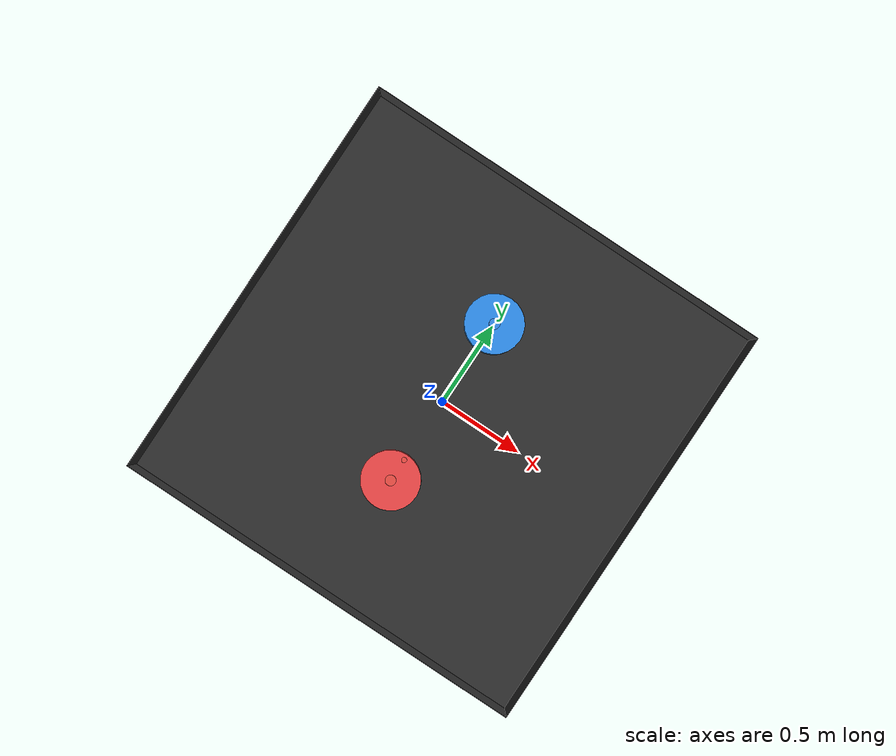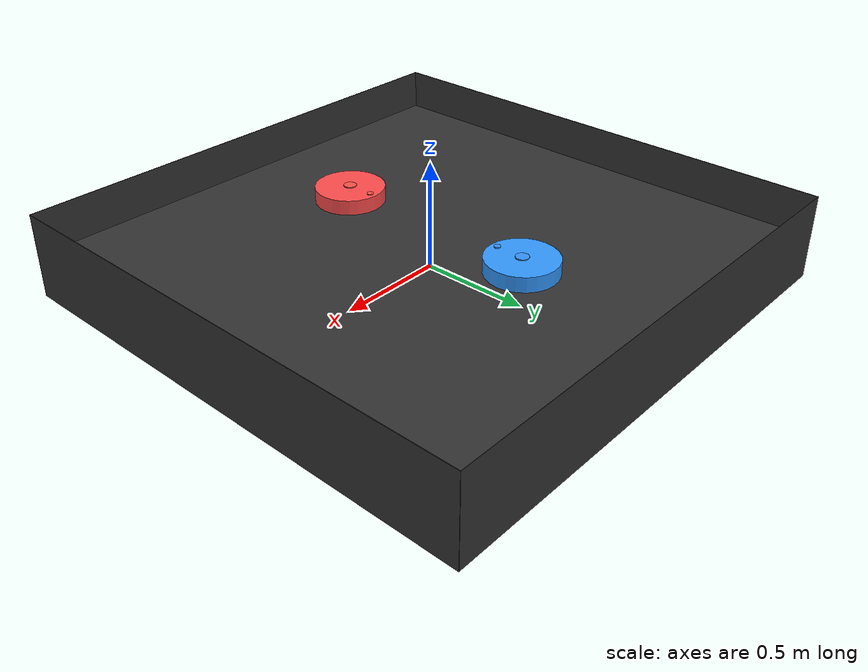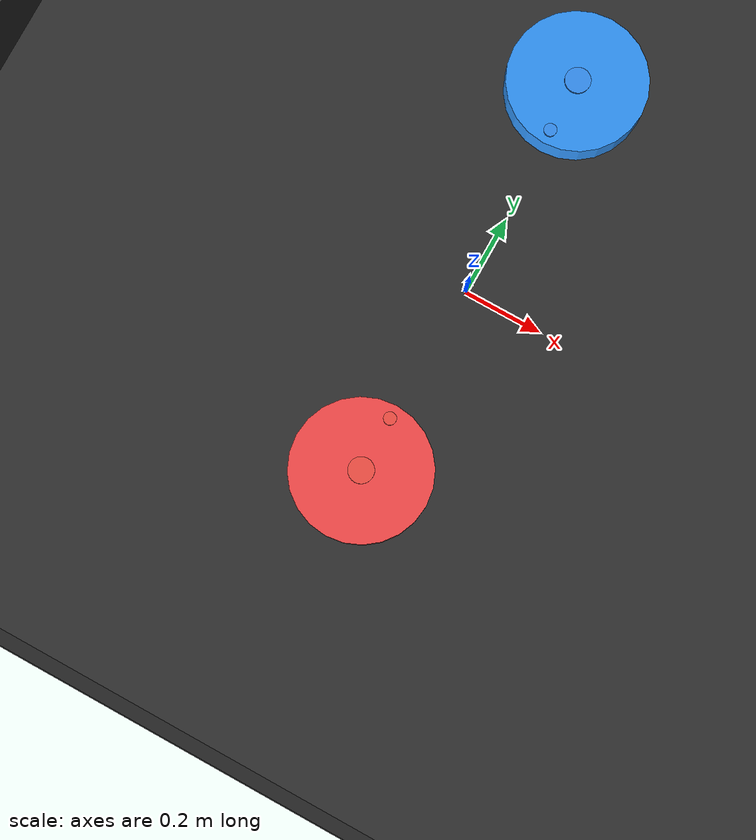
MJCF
<mujoco model="roomba_v1">
    <option iterations="8" ls_iterations="16" solver="Newton" timestep="0.002">
    </option>
    <default>
        <motor ctrllimited="true" ctrlrange="-1 1"/>
        <geom density="700"/>
        <joint damping="0.1" armature="0.1"/>
    </default>
    <asset>
        <texture name="skybox" type="skybox" builtin="gradient" rgb1=".4 .6 .8" rgb2="0 0 0"
               width="800" height="800" mark="random" markrgb="1 1 1"/>
        <material name="sky" texture="skybox" emission="1"/>
        <material name="roomba1_color" rgba="0.2 0.6 1 1"/>   <!-- Blue -->
        <material name="roomba1_decal_color" rgba="0.22 0.58 0.98 1"/>
        <material name="roomba2_color" rgba="1 0.3 0.3 1"/>   <!-- Red -->
        <material name="roomba2_decal_color" rgba="0.98 0.32 0.28 1"/>
        <material name="floor_color" rgba="0.2 0.2 0.2 1"/>
    </asset>
    <worldbody>
        <geom name="floor" type="box" size="1.2 1.2 0.1" pos="0 0 0" material="floor_color" friction="0.9 0.005 0.0001"/>
        <geom name="wall1" type="box" size="0.001 1.2 0.2" pos="1.2 0 0.1" material="floor_color" contype="0" conaffinity="0"/>
        <geom name="wall2" type="box" size="1.2 0.001 0.2" pos="0 1.2 0.1" material="floor_color" contype="0" conaffinity="0"/>
        <geom name="wall3" type="box" size="0.001 1.2 0.2" pos="-1.2 0 0.1" material="floor_color" contype="0" conaffinity="0"/>
        <geom name="wall4" type="box" size="1.2 0.001 0.2" pos="0 -1.2 0.1" material="floor_color" contype="0" conaffinity="0"/>
        <light name="light" pos="0 0 7" dir="0 0 -1" mode="fixed"/>
        <camera name="side" pos="-4 0 2" xyaxes="0 -1 0 1 0 2" mode="fixed"/>
        <body name="roomba1" pos="0 0.5 0.2">
            <freejoint name="root1"/>
            <geom name="roomba1" type="cylinder" size="0.1625 0.035" pos="0 0 0" material="roomba1_color"/>
            <site name="side_left_range1" type="sphere" size="0.01" pos="0.11 0.12 0" quat="-0.7071 0.7071 0 0" rgba="0 0 0 0"/>
            <site name="side_right_range1" type="sphere" size="0.01" pos="-0.11 0.12 0" quat="-0.7071 0.7071 0 0" rgba="0 0 0 0"/>
            <body name="lwheel1" pos="0.115 0.005 -0.005">
                <joint name="lwheel1" type="hinge" axis="1 0 0"/>
                <geom type="cylinder" size="0.04 0.015" quat="0 0.7071 0 0.7071"/>
            </body>
            <body name="rwheel1" pos="-0.115 0.005 -0.005">
                <joint name="rwheel1" type="hinge" axis="1 0 0"/>
                <geom type="cylinder" size="0.04 0.015" quat="0 0.7071 0 0.7071"/>
            </body>
            <body name="fwheel1" pos="0 -0.13 -0.025">
                <geom type="sphere" size="0.02" friction="0 0 0"/>
            </body>
            <body name="fsensor1" pos="0 -0.13 0.02">
                <geom type="cylinder" size="0.015 0.02" material="roomba1_decal_color" contype="0" conaffinity="0"/>
            </body>
            <body name="onbutton1" pos="0 0 0.02">
                <geom type="cylinder" size="0.03 0.02" material="roomba1_decal_color" contype="0" conaffinity="0"/>
            </body>
        </body>
        <body name="roomba2" pos="0 -0.5 0.2" quat="0 0 0 1">
            <freejoint name="root2"/>
            <geom name="roomba2" type="cylinder" size="0.1625 0.035" pos="0 0 0" material="roomba2_color"/>
            <site name="side_left_range2" type="sphere" size="0.01" pos="0.11 0.12 0" quat="-0.7071 0.7071 0 0" rgba="0 0 0 0"/>
            <site name="side_right_range2" type="sphere" size="0.01" pos="-0.11 0.12 0" quat="-0.7071 0.7071 0 0" rgba="0 0 0 0"/>
            <body name="lwheel2" pos="0.115 0.005 -0.005">
                <joint name="lwheel2" type="hinge" axis="1 0 0"/>
                <geom type="cylinder" size="0.04 0.015" quat="0 0.7071 0 0.7071"/>
            </body>
            <body name="rwheel2" pos="-0.115 0.005 -0.005">
                <joint name="rwheel2" type="hinge" axis="1 0 0"/>
                <geom type="cylinder" size="0.04 0.015" quat="0 0.7071 0 0.7071"/>
            </body>
            <body name="fwheel2" pos="0 -0.13 -0.025">
                <geom type="sphere" size="0.02" friction="0 0 0"/>
            </body>
            <body name="fsensor2" pos="0 -0.13 0.02">
                <geom type="cylinder" size="0.015 0.02" material="roomba2_decal_color" contype="0" conaffinity="0"/>
            </body>
            <body name="onbutton2" pos="0 0 0.02">
                <geom type="cylinder" size="0.03 0.02" material="roomba2_decal_color" contype="0" conaffinity="0"/>
            </body>
        </body>
    </worldbody>

    <actuator>
        <motor name="lwheel1" joint="lwheel1" gear="2"/>
        <motor name="rwheel1" joint="rwheel1" gear="2"/>
        <motor name="lwheel2" joint="lwheel2" gear="2"/>
        <motor name="rwheel2" joint="rwheel2" gear="2"/>
    </actuator>

    <sensor>
        <!-- Roomba 1 -->
        <rangefinder name="side_left_range1" site="side_left_range1"/>
        <rangefinder name="side_right_range1" site="side_right_range1"/>

        <!-- Roomba 2 -->
        <rangefinder name="side_left_range2" site="side_left_range2"/>
        <rangefinder name="side_right_range2" site="side_right_range2"/>
    </sensor>
</mujoco>
